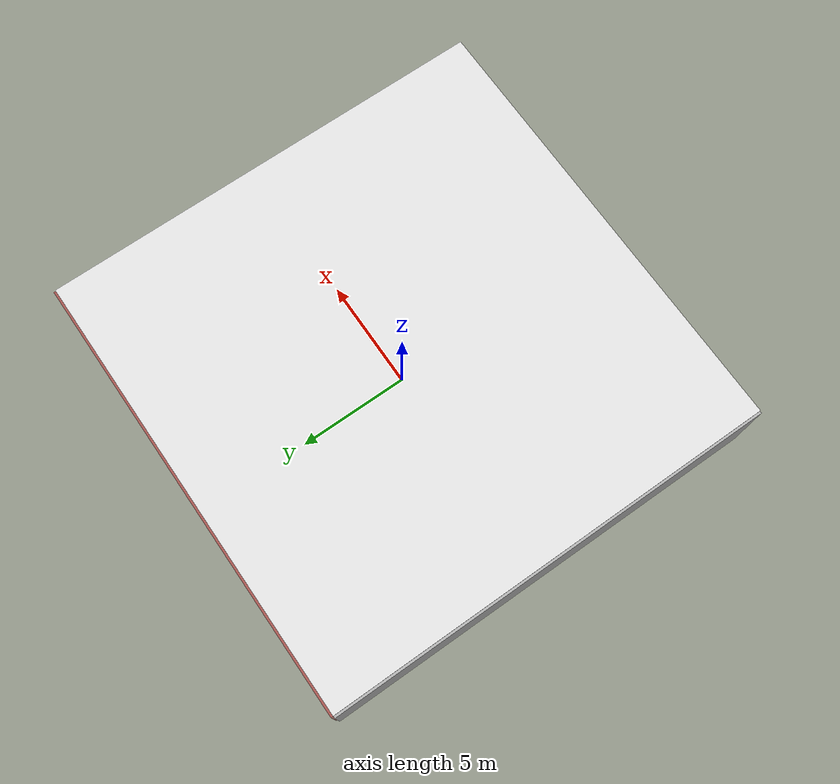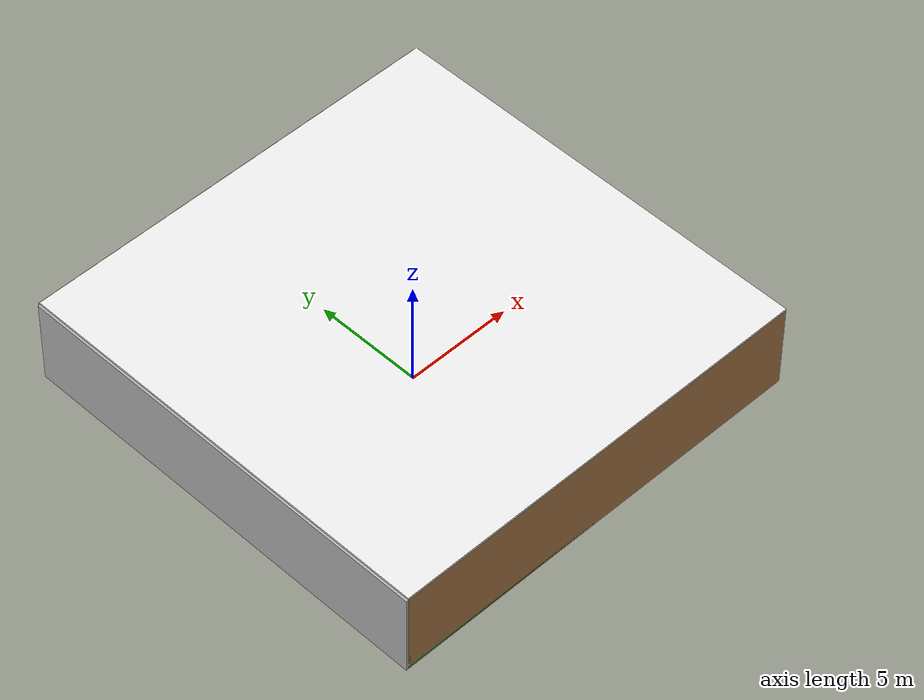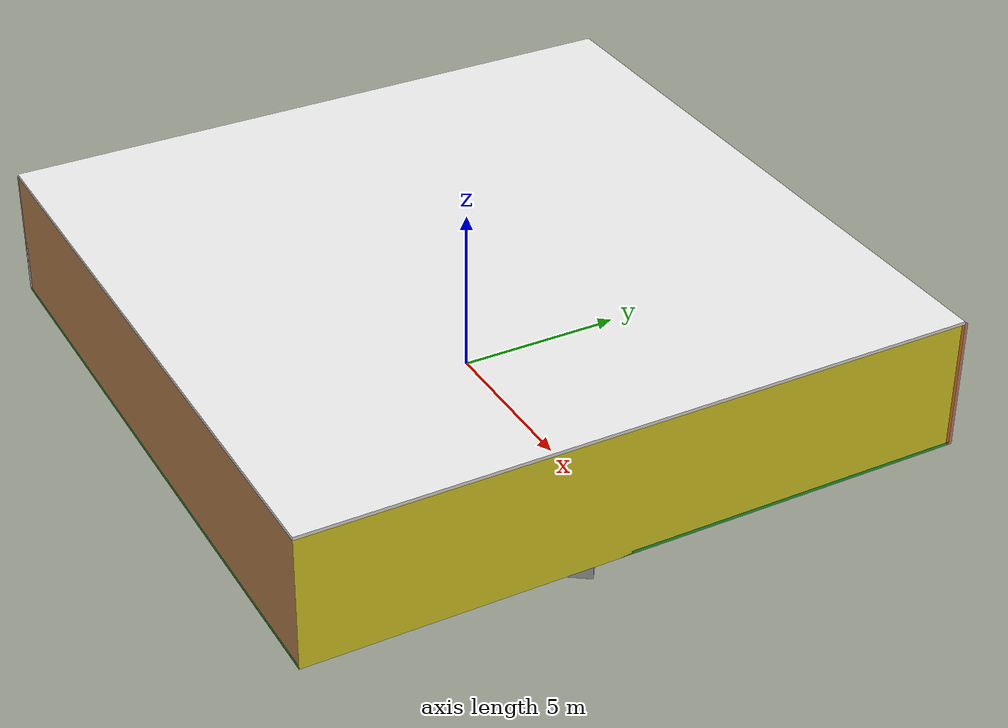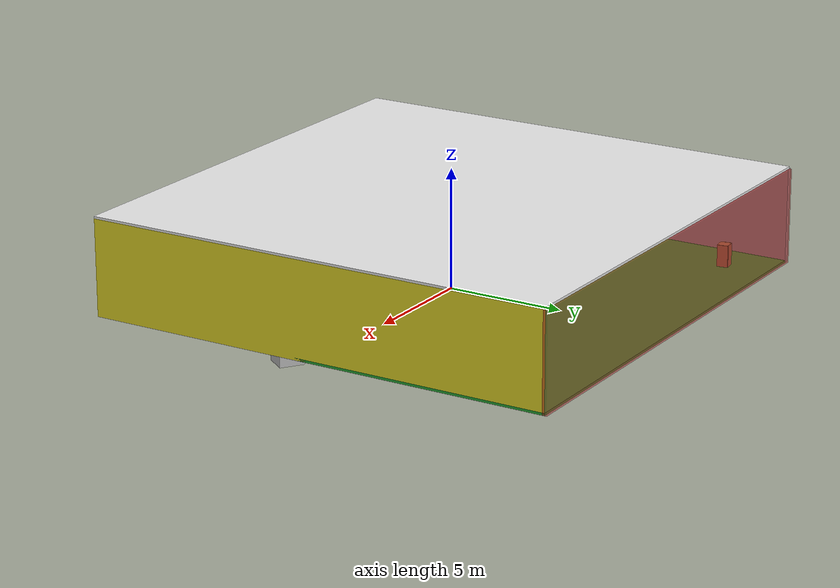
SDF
<sdf version="1.4">
 <world name="default">
  <physics type="ode">
   <max_step_size>0.001</max_step_size>
   <real_time_factor>1</real_time_factor>
   <real_time_update_rate>1000</real_time_update_rate>
   <gravity>0 0 -9.8</gravity>
  </physics>
  <scene><ambient>0.4 0.4 0.4 1</ambient><background>0.7 0.7 0.7 1</background><shadows>1</shadows></scene>
  <model name="Surrounding">
   <static>1</static>
   <link name="Ceiling">
    <collision name="Ceiling_Collision"><geometry><box><size>20 20 0.1</size></box></geometry></collision>
    <visual name="Ceiling_Visual">
     <geometry><box><size>20 20 0.1</size></box></geometry>
     <material>
      <script><uri>file://media/materials/scripts/gazebo.material</uri><name>Gazebo/White</name></script>
     </material>
    </visual>
    <pose>0 0 4.05 0 0 0</pose>
   </link>
   <link name="Wall_South">
    <collision name="Wall_South_Collision">
     <geometry><box><size>20 0 4</size></box></geometry>
     <pose>0 0 2 0 -0 0</pose>
    </collision>
    <visual name="Wall_South_Visual">
     <pose>0 0 2 0 -0 0</pose>
     <geometry><box><size>20 0 4</size></box></geometry>
     <material>
      <script><uri>file://media/materials/scripts/gazebo.material</uri><name>Gazebo/Wood</name></script>
     </material>
    </visual>
    <velocity_decay><linear>0</linear><angular>0</angular></velocity_decay>
    <pose>0 -10 0 0 -0 0</pose>
   </link>
   <link name="Wall_East">
    <collision name="Wall_21_Collision">
     <geometry><box><size>20 0 4</size></box></geometry>
     <pose>0 0 2 0 -0 0</pose>
    </collision>
    <visual name="Wall_21_Visual">
     <pose>0 0 2 0 -0 0</pose>
     <geometry><box><size>20 0 4</size></box></geometry>
     <material>
      <script><uri>file://media/materials/scripts/gazebo.material</uri><name>Gazebo/Yellow</name></script>
     </material>
    </visual>
    <velocity_decay><linear>0</linear><angular>0</angular></velocity_decay>
    <pose>10 0 0 0 -0 1.5708</pose>
   </link>
   <link name="Wall_North">
    <collision name="Wall_22_Collision">
     <geometry><box><size>20 0.2 4</size></box></geometry>
     <pose>0 0 2 0 -0 0</pose>
    </collision>
    <visual name="Wall_22_Visual">
     <pose>0 0 2 0 -0 0</pose>
     <geometry><box><size>20 0.2 4</size></box></geometry>
     <material>
      <script><uri>file://media/materials/scripts/gazebo.material</uri><name>Gazebo/RedTransparent</name></script>
     </material>
    </visual>
    <velocity_decay><linear>0</linear><angular>0</angular></velocity_decay>
    <pose>0 10 0 0 -0 0</pose>
   </link>
   <link name="Wall_West">
    <collision name="Wall_23_Collision">
     <geometry><box><size>20 0.2 4</size></box></geometry>
     <pose>0 0 2 0 -0 0</pose>
    </collision>
    <visual name="Wall_23_Visual">
     <pose>0 0 2 0 -0 0</pose>
     <geometry><box><size>20 0.2 4</size></box></geometry>
     <material>
      <script><uri>file://media/materials/scripts/gazebo.material</uri><name>Gazebo/CloudySky</name></script>
     </material>
    </visual>
    <velocity_decay><linear>0</linear><angular>0</angular></velocity_decay>
    <pose>-10 0 0 0 0 -1.5708</pose>
   </link>
   <link name="Ground_link">
    <collision name="collision">
     <pose>0 0 .05 0 -0 0</pose>
     <geometry><box><size>20 20 0.1</size></box></geometry>
    </collision>
    <visual name="visual">
     <pose>0 0 .05 0 -0 0</pose>
     <geometry><box><size>20 20 0.1</size></box></geometry>
     <material>
      <script><uri>file://media/materials/scripts/gazebo.material</uri><name>Gazebo/Green</name></script>
     </material>
    </visual>
   </link>
   <static>1</static>
  </model>
  <spherical_coordinates>
   <surface_model>EARTH_WGS84</surface_model>
   <latitude_deg>0</latitude_deg>
   <longitude_deg>0</longitude_deg>
   <elevation>0</elevation>
   <heading_deg>0</heading_deg>
  </spherical_coordinates>
  <light name="lightball_0" type="diffuse">
   <diffuse>0.8 0.8 0.8 1</diffuse>
   <specular>0.2 0.2 0.2 1</specular>
   <attenuation>
    <range>100</range>
    <constant>0.7</constant>
    <linear>0.01</linear>
    <quadratic>0.001</quadratic>
   </attenuation>
   <direction>-0.5 0.1 -0.9</direction>
   <pose>7.59100322073 -6.66217887409 3.12305238488 0 0 0</pose>
  </light>
  <light name="lightball_1" type="diffuse">
   <diffuse>0.8 0.8 0.8 1</diffuse>
   <specular>0.2 0.2 0.2 1</specular>
   <attenuation>
    <range>100</range>
    <constant>0.7</constant>
    <linear>0.01</linear>
    <quadratic>0.001</quadratic>
   </attenuation>
   <direction>-0.5 0.1 -0.9</direction>
   <pose>1.22195181567 -4.06369611226 3.51966246049 0 0 0</pose>
  </light>
  <light name="lightball_2" type="diffuse">
   <diffuse>0.8 0.8 0.8 1</diffuse>
   <specular>0.2 0.2 0.2 1</specular>
   <attenuation>
    <range>100</range>
    <constant>0.7</constant>
    <linear>0.01</linear>
    <quadratic>0.001</quadratic>
   </attenuation>
   <direction>-0.5 0.1 -0.9</direction>
   <pose>7.5843327552 9.75202031561 2.625969143 0 0 0</pose>
  </light>
  <light name="lightball_3" type="diffuse">
   <diffuse>0.8 0.8 0.8 1</diffuse>
   <specular>0.2 0.2 0.2 1</specular>
   <attenuation>
    <range>100</range>
    <constant>0.7</constant>
    <linear>0.01</linear>
    <quadratic>0.001</quadratic>
   </attenuation>
   <direction>-0.5 0.1 -0.9</direction>
   <pose>-1.67704271836 4.75943532928 3.62819837492 0 0 0</pose>
  </light>
  <light name="lightball_4" type="diffuse">
   <diffuse>0.8 0.8 0.8 1</diffuse>
   <specular>0.2 0.2 0.2 1</specular>
   <attenuation>
    <range>100</range>
    <constant>0.7</constant>
    <linear>0.01</linear>
    <quadratic>0.001</quadratic>
   </attenuation>
   <direction>-0.5 0.1 -0.9</direction>
   <pose>9.21595451148 -5.2697316682 3.59124813675 0 0 0</pose>
  </light>
  <light name="lightball_5" type="diffuse">
   <diffuse>0.8 0.8 0.8 1</diffuse>
   <specular>0.2 0.2 0.2 1</specular>
   <attenuation>
    <range>100</range>
    <constant>0.7</constant>
    <linear>0.01</linear>
    <quadratic>0.001</quadratic>
   </attenuation>
   <direction>-0.5 0.1 -0.9</direction>
   <pose>2.56558261504 -4.60195924001 2.68606701165 0 0 0</pose>
  </light>
  <include><uri>model://cabinet</uri><pose>-8.04368478514 8.13036343541 0 0 0 1.7102495077</pose></include>
  <include>
   <uri>model://construction_cone</uri>
   <pose>-4.19224528683 -7.10103900878 0 0 0 0.694028692451</pose>
  </include>
  <include>
   <uri>model://robocup_3Dsim_goal</uri>
   <pose>-1.61725458723 -4.51662847883 0 0 0 0.214673217323</pose>
  </include>
  <include>
   <uri>model://robocup_3Dsim_goal</uri>
   <pose>3.7558537193 -5.20091956889 0 0 0 2.82109096846</pose>
  </include>
  <include>
   <uri>model://textured_shapes</uri>
   <pose>4.17867064825 2.26421417265 0 0 0 0.0917200557479</pose>
  </include>
  <include>
   <uri>model://textured_shapes</uri>
   <pose>7.95581795016 -0.763881084013 0 0 0 0.959222620761</pose>
  </include>
 </world>
</sdf>

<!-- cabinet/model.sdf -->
<sdf version="1.5">
  <model name="cabinet">
    <static>true</static>
    <link name="cabinet_bottom_plate">
      <inertial>
        <pose>0 0 -1 0 0 0</pose>
        <inertia>
          <ixx>2.050000</ixx>
          <ixy>0</ixy>
          <ixz>0</ixz>
          <iyy>2.050000</iyy>
          <iyz>0</iyz>
          <izz>2.050000</izz>
        </inertia>
        <mass>25.000000</mass>
      </inertial>
      <collision name="cabinet_bottom_plate_geom">
        <pose>0 0 0.010000 0 0 0</pose>
        <geometry>
          <box>
            <size>0.450000 0.450000 0.020000</size>
          </box>
        </geometry>
      </collision>
      <visual name="cabinet_bottom_plate_geom_visual">
        <pose>0 0 0.010000 0 0 0</pose>
        <geometry>
          <box>
            <size>0.450000 0.450000 0.020000</size>
          </box>
        </geometry>
        <material>
          <script>
            <uri>model://media/materials/scripts/gazebo.material</uri>
            <name>Gazebo/Wood</name>
          </script>
        </material>
      </visual>
      <collision name="cabinet_bottom_plate_geom_cabinet_back_plate">
        <pose>0.235000 0 0.510000 0 0 0</pose>
        <geometry>
          <box>
            <size>0.020000 0.450000 1.020000</size>
          </box>
        </geometry>
      </collision>
      <visual name="cabinet_bottom_plate_geom_cabinet_back_plate_visual">
        <pose>0.235000 0 0.510000 0 0 0</pose>
        <geometry>
          <box>
            <size>0.020000 0.450000 1.020000</size>
          </box>
        </geometry>
        <material>
          <script>
            <uri>model://media/materials/scripts/gazebo.material</uri>
            <name>Gazebo/Wood</name>
          </script>
        </material>
      </visual>
      <collision name="cabinet_bottom_plate_geom_cabinet_left_plate">
        <pose>0 0.235000 0.510000 0 0 0</pose>
        <geometry>
          <box>
            <size>0.450000 0.020000 1.020000</size>
          </box>
        </geometry>
      </collision>
      <visual name="cabinet_bottom_plate_geom_cabinet_left_plate_visual">
        <pose>0 0.235000 0.510000 0 0 0</pose>
        <geometry>
          <box>
            <size>0.450000 0.020000 1.020000</size>
          </box>
        </geometry>
        <material>
          <script>
            <uri>model://media/materials/scripts/gazebo.material</uri>
            <name>Gazebo/Wood</name>
          </script>
        </material>
      </visual>
      <collision name="cabinet_bottom_plate_geom_cabinet_middle_plate">
        <pose>0 0 0.510000 0 0 0</pose>
        <geometry>
          <box>
            <size>0.450000 0.450000 0.020000</size>
          </box>
        </geometry>
      </collision>
      <visual name="cabinet_bottom_plate_geom_cabinet_middle_plate_visual">
        <pose>0 0 0.510000 0 0 0</pose>
        <geometry>
          <box>
            <size>0.450000 0.450000 0.020000</size>
          </box>
        </geometry>
        <material>
          <script>
            <uri>model://media/materials/scripts/gazebo.material</uri>
            <name>Gazebo/Wood</name>
          </script>
        </material>
      </visual>
      <collision name="cabinet_bottom_plate_geom_cabinet_right_plate">
        <pose>0 -0.235000 0.510000 0 0 0</pose>
        <geometry>
          <box>
            <size>0.450000 0.020000 1.020000</size>
          </box>
        </geometry>
      </collision>
      <visual name="cabinet_bottom_plate_geom_cabinet_right_plate_visual">
        <pose>0 -0.235000 0.510000 0 0 0</pose>
        <geometry>
          <box>
            <size>0.450000 0.020000 1.020000</size>
          </box>
        </geometry>
        <material>
          <script>
            <uri>model://media/materials/scripts/gazebo.material</uri>
            <name>Gazebo/Wood</name>
          </script>
        </material>
      </visual>
      <collision name="cabinet_bottom_plate_geom_cabinet_top_plate">
        <pose>0 0 1.010000 0 0 0</pose>
        <geometry>
          <box>
            <size>0.450000 0.450000 0.020000</size>
          </box>
        </geometry>
      </collision>
      <visual name="cabinet_bottom_plate_geom_cabinet_top_plate_visual">
        <pose>0 0 1.010000 0 0 0</pose>
        <geometry>
          <box>
            <size>0.450000 0.450000 0.020000</size>
          </box>
        </geometry>
        <material>
          <script>
            <uri>model://media/materials/scripts/gazebo.material</uri>
            <name>Gazebo/Wood</name>
          </script>
        </material>
      </visual>
    </link>
  </model>
</sdf>

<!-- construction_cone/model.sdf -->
<sdf version="1.5">
  <model name="Construction Cone">
    <link name="link">
      <collision name="collision">
        <geometry>
          <mesh>
            <scale>10 10 10</scale>
            <uri>file://isr-testbed/construction_cone/meshes/construction_cone.dae</uri>
          </mesh>
        </geometry>
      </collision>
      <visual name="visual">
        <geometry>
          <mesh>
            <scale>10 10 10</scale>
            <uri>file://isr-testbed/construction_cone/meshes/construction_cone.dae</uri>
          </mesh>
        </geometry>
      </visual>
    </link>
  </model>
</sdf>

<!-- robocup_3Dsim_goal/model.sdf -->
<sdf version="1.5">
  <model name="robocup_3d_goal">
    <static>true</static>
    <link name="left_post">
      <pose>0 1.05 0.45 0 0 0</pose>
      <collision name="collision">
        <geometry>
          <cylinder>
            <radius>0.05</radius>
            <length>0.9</length>
          </cylinder>
        </geometry>
      </collision>
      <visual name="visual">
        <geometry>
          <cylinder>
            <radius>0.05</radius>
            <length>0.9</length>
          </cylinder>
        </geometry>
        <material>
          <script>
            <uri>file://media/materials/scripts/gazebo.material</uri>
            <name>Gazebo/ZincYellow</name>
          </script>
        </material>
      </visual>
    </link>
    <link name="left_support_horiz_lower">
      <pose>0.30 1.05 0.01 0 0 0</pose>
      <collision name="collision">
        <geometry>
          <box>
            <size>0.50 0.02 0.02</size>
          </box>
        </geometry>
      </collision>
      <visual name="visual">
        <geometry>
          <box>
            <size>0.50 0.02 0.02</size>
          </box>
        </geometry>
        <material>
          <script>
            <uri>file://media/materials/scripts/gazebo.material</uri>
            <name>Gazebo/White</name>
          </script>
        </material>
      </visual>
    </link>
    <link name="left_support_horiz_upper">
      <pose>0.30 1.05 0.79 0 0 0</pose>
      <collision name="collision">
        <geometry>
          <box>
            <size>0.50 0.02 0.02</size>
          </box>
        </geometry>
      </collision>
      <visual name="visual">
        <geometry>
          <box>
            <size>0.50 0.02 0.02</size>
          </box>
        </geometry>
        <material>
          <script>
            <uri>file://media/materials/scripts/gazebo.material</uri>
            <name>Gazebo/White</name>
          </script>
        </material>
      </visual>
    </link>
    <link name="left_support_vertical">
      <pose>0.56 1.05 0.4 0 1.5708 0</pose>
      <collision name="collision">
        <geometry>
          <box>
            <size>0.80 0.02 0.02</size>
          </box>
        </geometry>
      </collision>
      <visual name="visual">
        <geometry>
          <box>
            <size>0.80 0.02 0.02</size>
          </box>
        </geometry>
        <material>
          <script>
            <uri>file://media/materials/scripts/gazebo.material</uri>
            <name>Gazebo/White</name>
          </script>
        </material>
      </visual>
    </link>
    <link name="right_support_horiz_lower">
      <pose>0.30 -1.05 0.01 0 0 0</pose>
      <collision name="collision">
        <geometry>
          <box>
            <size>0.50 0.02 0.02</size>
          </box>
        </geometry>
      </collision>
      <visual name="visual">
        <geometry>
          <box>
            <size>0.50 0.02 0.02</size>
          </box>
        </geometry>
        <material>
          <script>
            <uri>file://media/materials/scripts/gazebo.material</uri>
            <name>Gazebo/White</name>
          </script>
        </material>
      </visual>
    </link>
    <link name="right_support_horiz_upper">
      <pose>0.30 -1.05 0.79 0 0 0</pose>
      <collision name="collision">
        <geometry>
          <box>
            <size>0.50 0.02 0.02</size>
          </box>
        </geometry>
      </collision>
      <visual name="visual">
        <geometry>
          <box>
            <size>0.50 0.02 0.02</size>
          </box>
        </geometry>
        <material>
          <script>
            <uri>file://media/materials/scripts/gazebo.material</uri>
            <name>Gazebo/White</name>
          </script>
        </material>
      </visual>
    </link>
    <link name="right_support_vertical">
      <pose>0.56 -1.05 0.4 0 1.5708 0</pose>
      <collision name="collision">
        <geometry>
          <box>
            <size>0.80 0.02 0.02</size>
          </box>
        </geometry>
      </collision>
      <visual name="visual">
        <geometry>
          <box>
            <size>0.80 0.02 0.02</size>
          </box>
        </geometry>
        <material>
          <script>
            <uri>file://media/materials/scripts/gazebo.material</uri>
            <name>Gazebo/White</name>
          </script>
        </material>
      </visual>
    </link>
    <link name="center_support_horiz_lower">
      <pose>0.56 0 0.01 0 1.5708 0</pose>
      <collision name="collision">
        <geometry>
          <box>
            <size>0.02 2.08 0.02</size>
          </box>
        </geometry>
      </collision>
      <visual name="visual">
        <geometry>
          <box>
            <size>0.02 2.08 0.02</size>
          </box>
        </geometry>
        <material>
          <script>
            <uri>file://media/materials/scripts/gazebo.material</uri>
            <name>Gazebo/White</name>
          </script>
        </material>
      </visual>
    </link>
    <link name="center_support_horiz_upper">
      <pose>0.56 0 0.79 0 1.5708 0</pose>
      <collision name="collision">
        <geometry>
          <box>
            <size>0.02 2.08 0.02</size>
          </box>
        </geometry>
      </collision>
      <visual name="visual">
        <geometry>
          <box>
            <size>0.02 2.08 0.02</size>
          </box>
        </geometry>
        <material>
          <script>
            <uri>file://media/materials/scripts/gazebo.material</uri>
            <name>Gazebo/White</name>
          </script>
        </material>
      </visual>
    </link>
    <link name="right_post">
      <pose>0 -1.05 0.45 0 0 0</pose>
      <collision name="collision">
        <geometry>
          <cylinder>
            <radius>0.05</radius>
            <length>0.9</length>
          </cylinder>
        </geometry>
      </collision>
      <visual name="visual">
        <geometry>
          <cylinder>
            <radius>0.05</radius>
            <length>0.9</length>
          </cylinder>
        </geometry>
        <material>
          <script>
            <uri>file://media/materials/scripts/gazebo.material</uri>
            <name>Gazebo/ZincYellow</name>
          </script>
        </material>
      </visual>
    </link>
    <link name="crossbar">
      <pose>0 0 0.85 1.57 1.57 0</pose>
      <collision name="collision">
        <geometry>
          <cylinder>
            <radius>0.05</radius>
            <length>2.0</length>
          </cylinder>
        </geometry>
      </collision>
      <visual name="visual">
        <geometry>
          <cylinder>
            <radius>0.05</radius>
            <length>2.0</length>
          </cylinder>
        </geometry>
        <material>
          <script>
            <uri>file://media/materials/scripts/gazebo.material</uri>
            <name>Gazebo/ZincYellow</name>
          </script>
        </material>
      </visual>
    </link>
    <link name="center_net">
      <pose>0.56 0 0.40 0 0 0</pose>
      <collision name="collision">
        <geometry>
          <box>
            <size>0.01 2.1 0.80</size>
          </box>
        </geometry>
      </collision>
      <visual name="visual">
        <geometry>
          <box>
            <size>0.01 2.1 0.80</size>
          </box>
        </geometry>
        <material>
          <script>
            <uri>model://../model_source/models/robocup09_spl_field/materials/scripts/</uri>
            <uri>model://../model_source/models/robocup09_spl_field/materials/textures/</uri>
            <name>RoboCup/Net</name>
          </script>
        </material>
      </visual>
    </link>
    <link name="left_net">
      <pose>0.30 1.05 0.40 0 0 0</pose>
      <collision name="collision">
        <geometry>
          <box>
            <size>0.50 0.01 0.76</size>
          </box>
        </geometry>
      </collision>
      <visual name="visual">
        <geometry>
          <box>
            <size>0.50 0.01 0.76</size>
          </box>
        </geometry>
        <material>
          <script>
            <uri>model://../model_source/models/robocup09_spl_field/materials/scripts/</uri>
            <uri>model://../model_source/models/robocup09_spl_field/materials/textures/</uri>
            <name>RoboCup/Net</name>
          </script>
        </material>
      </visual>
    </link>
    <link name="right_net">
      <pose>0.30 -1.05 0.40 0 0 0</pose>
      <collision name="collision">
        <geometry>
          <box>
            <size>0.50 0.01 0.76</size>
          </box>
        </geometry>
      </collision>
      <visual name="visual">
        <geometry>
          <box>
            <size>0.50 0.01 0.76</size>
          </box>
        </geometry>
        <material>
          <script>
            <uri>model://../model_source/models/robocup09_spl_field/materials/scripts/</uri>
            <uri>model://../model_source/models/robocup09_spl_field/materials/textures/</uri>
            <name>RoboCup/Net</name>
          </script>
        </material>
      </visual>
    </link>
  </model>
</sdf>

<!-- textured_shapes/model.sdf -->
<sdf version="1.6">
  <model name="textured_shapes">
    <pose>0 0 0.5 0 0 0</pose>
    <link name="box">
      <pose>0 -1.5 0 0 0 0</pose>
      <collision name="collision">
        <geometry>
          <box>
            <size>1 1 1</size>
          </box>
        </geometry>
      </collision>
      <visual name="visual">
        <geometry>
          <box>
            <size>1 1 1</size>
          </box>
        </geometry>
        <material>
          <script>
            <uri>model://../model_source/models/textured_shapes/materials/scripts</uri>
            <uri>model://../model_source/models/textured_shapes/materials/textures</uri>
            <name>TexturedShape/Squares</name>
          </script>
        </material>
      </visual>
    </link>
    <link name="sphere">
      <collision name="collision">
        <geometry>
          <sphere>
            <radius>0.5</radius>
          </sphere>
        </geometry>
      </collision>
      <visual name="visual">
        <geometry>
          <sphere>
            <radius>0.5</radius>
          </sphere>
        </geometry>
        <material>
          <script>
            <uri>model://../model_source/models/textured_shapes/materials/scripts</uri>
            <uri>model://../model_source/models/textured_shapes/materials/textures</uri>
            <name>TexturedShape/Squares</name>
          </script>
        </material>
      </visual>
    </link>
    <link name="cylinder">
      <pose>0 1.5 0 0 0 0</pose>
      <collision name="collision">
        <geometry>
          <cylinder>
            <radius>0.5</radius>
            <length>1</length>
          </cylinder>
        </geometry>
      </collision>
      <visual name="visual">
        <geometry>
          <cylinder>
            <radius>0.5</radius>
            <length>1</length>
          </cylinder>
        </geometry>
        <material>
          <script>
            <uri>model://../model_source/models/textured_shapes/materials/scripts</uri>
            <uri>model://../model_source/models/textured_shapes/materials/textures</uri>
            <name>TexturedShape/Squares</name>
          </script>
        </material>
      </visual>
    </link>
  </model>
</sdf>
